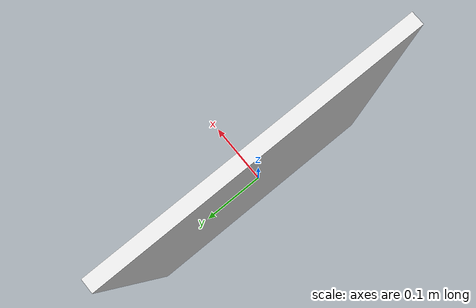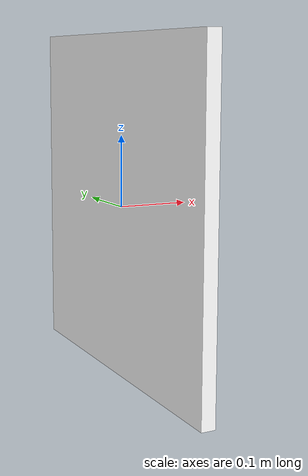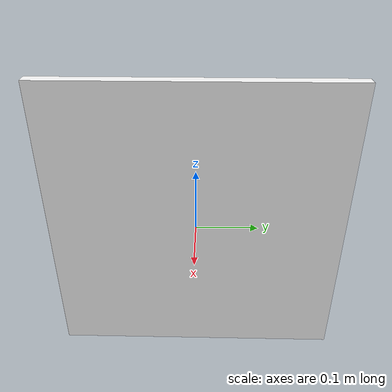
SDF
<?xml version="1.0" ?>
<!-- Regenerated by generate_world.py so size/texture match config/tag_map.yaml.
     The +X face carries the tag. -->
<sdf version="1.10">
  <model name="apriltag_marker">
    <static>true</static>
    <link name="link">
      <visual name="tag">
        <pose>0 0 0 0 0 0</pose>
        <geometry>
          <box><size>0.02 0.480 0.480</size></box>
        </geometry>
        <material>
          <ambient>1 1 1 1</ambient>
          <diffuse>1 1 1 1</diffuse>
          <specular>0.05 0.05 0.05 1</specular>
          <pbr>
            <metal>
              <albedo_map>materials/textures/tag36h11_0.png</albedo_map>
              <emissive_map>materials/textures/tag36h11_0.png</emissive_map>
              <metalness>0.0</metalness>
              <roughness>0.95</roughness>
            </metal>
          </pbr>
        </material>
      </visual>
    </link>
  </model>
</sdf>
